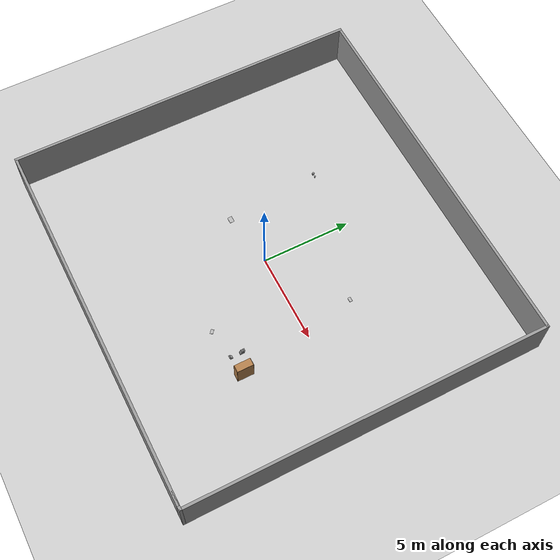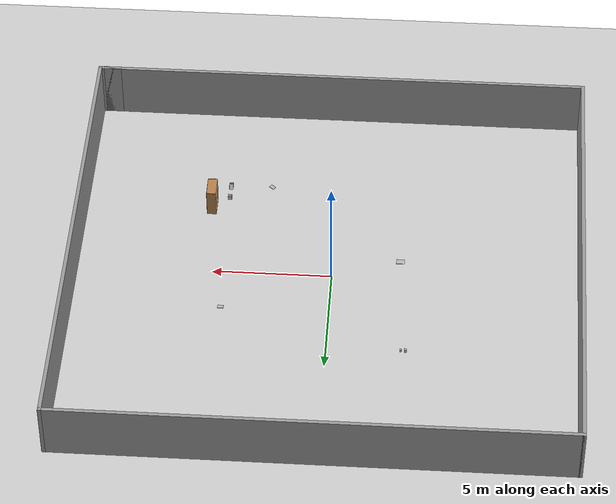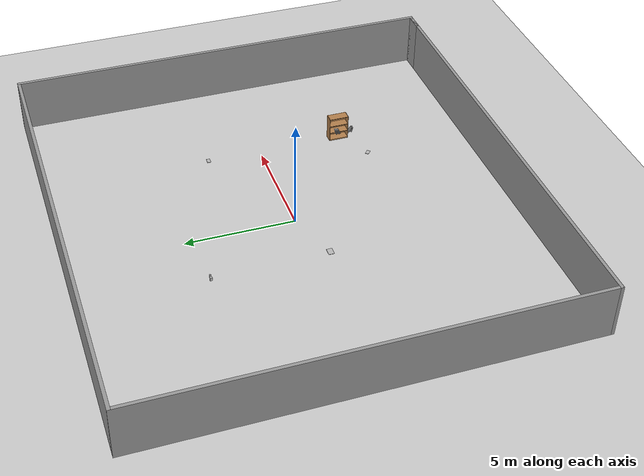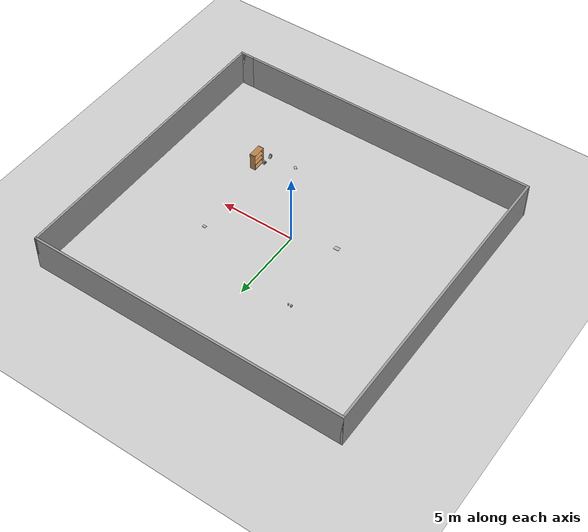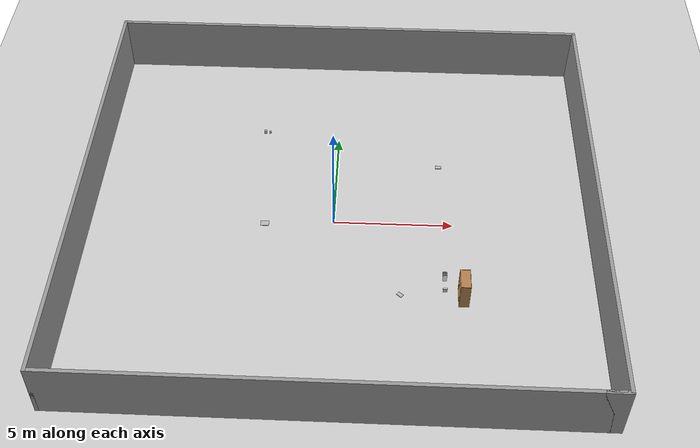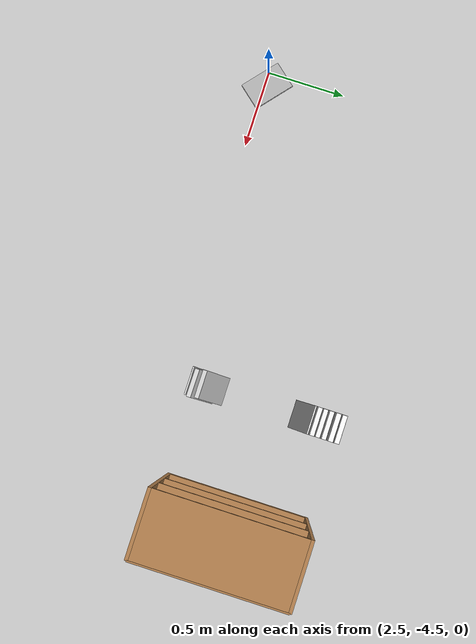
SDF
<sdf version="1.7">
 <world name="default">
  <light name="sun" type="directional">
   <pose>0 0 10 0 -0 0</pose>
   <diffuse>0.8 0.8 0.8 1</diffuse>
   <specular>0.1 0.1 0.1 1</specular>
   <attenuation>
    <range>1000</range>
    <constant>0.9</constant>
    <linear>0.01</linear>
    <quadratic>0.001</quadratic>
   </attenuation>
   <direction>-0.5 0.5 -1</direction>
   <spot><inner_angle>0</inner_angle><outer_angle>0</outer_angle><falloff>0</falloff></spot>
  </light>
  <model name="ground_plane">
   <static>1</static>
   <link name="link">
    <collision name="collision">
     <geometry><plane><normal>0 0 1</normal><size>100 100</size></plane></geometry>
     <surface><friction><ode><mu>100</mu><mu2>50</mu2></ode></friction></surface>
    </collision>
    <visual name="visual">
     <cast_shadows>0</cast_shadows>
     <geometry><plane><normal>0 0 1</normal><size>100 100</size></plane></geometry>
     <material>
      <script><uri>file://media/materials/scripts/gazebo.material</uri><name>Gazebo/Grey</name></script>
     </material>
    </visual>
   </link>
  </model>
  <gravity>0 0 -9.8</gravity>
  <magnetic_field>6e-06 2.3e-05 -4.2e-05</magnetic_field>
  <atmosphere type="adiabatic"/>
  <physics name="default_physics" default="0" type="ode">
   <max_step_size>0.001</max_step_size>
   <real_time_factor>1</real_time_factor>
   <real_time_update_rate>1000</real_time_update_rate>
  </physics>
  <scene><ambient>0.4 0.4 0.4 1</ambient><background>0.7 0.7 0.7 1</background><shadows>1</shadows></scene>
  <spherical_coordinates>
   <surface_model>EARTH_WGS84</surface_model>
   <latitude_deg>0</latitude_deg>
   <longitude_deg>0</longitude_deg>
   <elevation>0</elevation>
   <heading_deg>0</heading_deg>
  </spherical_coordinates>
  <model name="bookshelf">
   <static>1</static>
   <link name="link">
    <inertial><mass>1</mass></inertial>
    <collision name="back">
     <pose>0 0.005 0.6 0 -0 0</pose>
     <geometry><box><size>0.9 0.01 1.2</size></box></geometry>
    </collision>
    <visual name="visual1">
     <pose>0 0.005 0.6 0 -0 0</pose>
     <geometry><box><size>0.9 0.01 1.2</size></box></geometry>
     <material>
      <script><uri>file://media/materials/scripts/gazebo.material</uri><name>Gazebo/Wood</name></script>
     </material>
    </visual>
    <collision name="left_side">
     <pose>0.45 -0.195 0.6 0 -0 0</pose>
     <geometry><box><size>0.02 0.4 1.2</size></box></geometry>
    </collision>
    <visual name="visual2">
     <pose>0.45 -0.195 0.6 0 -0 0</pose>
     <geometry><box><size>0.02 0.4 1.2</size></box></geometry>
     <material>
      <script><uri>file://media/materials/scripts/gazebo.material</uri><name>Gazebo/Wood</name></script>
     </material>
    </visual>
    <collision name="right_side">
     <pose>-0.45 -0.195 0.6 0 -0 0</pose>
     <geometry><box><size>0.02 0.4 1.2</size></box></geometry>
    </collision>
    <visual name="visual3">
     <pose>-0.45 -0.195 0.6 0 -0 0</pose>
     <geometry><box><size>0.02 0.4 1.2</size></box></geometry>
     <material>
      <script><uri>file://media/materials/scripts/gazebo.material</uri><name>Gazebo/Wood</name></script>
     </material>
    </visual>
    <collision name="bottom">
     <pose>0 -0.195 0.03 0 -0 0</pose>
     <geometry><box><size>0.88 0.4 0.06</size></box></geometry>
    </collision>
    <visual name="visual4">
     <pose>0 -0.195 0.03 0 -0 0</pose>
     <geometry><box><size>0.88 0.4 0.06</size></box></geometry>
     <material>
      <script><uri>file://media/materials/scripts/gazebo.material</uri><name>Gazebo/Wood</name></script>
     </material>
    </visual>
    <collision name="top">
     <pose>0 -0.195 1.19 0 -0 0</pose>
     <geometry><box><size>0.88 0.4 0.02</size></box></geometry>
    </collision>
    <visual name="visual5">
     <pose>0 -0.195 1.19 0 -0 0</pose>
     <geometry><box><size>0.88 0.4 0.02</size></box></geometry>
     <material>
      <script><uri>file://media/materials/scripts/gazebo.material</uri><name>Gazebo/Wood</name></script>
     </material>
    </visual>
    <collision name="low_shelf">
     <pose>0 -0.195 0.43 0 -0 0</pose>
     <geometry><box><size>0.88 0.4 0.02</size></box></geometry>
    </collision>
    <visual name="visual6">
     <pose>0 -0.195 0.43 0 -0 0</pose>
     <geometry><box><size>0.88 0.4 0.02</size></box></geometry>
     <material>
      <script><uri>file://media/materials/scripts/gazebo.material</uri><name>Gazebo/Wood</name></script>
     </material>
    </visual>
    <collision name="high_shelf">
     <pose>0 -0.195 0.8 0 -0 0</pose>
     <geometry><box><size>0.88 0.4 0.02</size></box></geometry>
    </collision>
    <visual name="visual7">
     <pose>0 -0.195 0.8 0 -0 0</pose>
     <geometry><box><size>0.88 0.4 0.02</size></box></geometry>
     <material>
      <script><uri>file://media/materials/scripts/gazebo.material</uri><name>Gazebo/Wood</name></script>
     </material>
    </visual>
   </link>
   <pose>5.52634 -3.859 0.022492 0 0 -1.57</pose>
  </model>
  <model name="book_10">
   <link name="cover">
    <pose>0 -0.000108 0.015405 0 -0 0</pose>
    <visual name="visual">
     <geometry><box><size>0.245 0.16 0.03</size></box></geometry>
     <material>
      <script>
       <uri>model://book_10/materials/scripts</uri>
       <uri>model://book_10/materials/textures</uri>
       <name>book_10</name>
      </script>
     </material>
    </visual>
    <collision name="collision"><geometry><box><size>0.245 0.16 0.03</size></box></geometry></collision>
   </link>
   <link name="page">
    <pose>0 0.000608 0.015405 0 -0 0</pose>
    <visual name="visual">
     <geometry><box><size>0.24502 0.15862 0.028</size></box></geometry>
     <material>
      <lighting>1</lighting>
      <ambient>1 1 1 1</ambient>
      <diffuse>1 1 1 1</diffuse>
      <specular>0.01 0.01 0.01 1</specular>
      <emissive>0 0 0 1</emissive>
      <shader type="vertex"><normal_map>__default__</normal_map></shader>
     </material>
    </visual>
    <collision name="collision"><geometry><box><size>0.245 0.16 0.03</size></box></geometry></collision>
   </link>
   <static>1</static>
   <pose>4.53805 -3.48289 0.958324 3.13855 -1.30602 1.57134</pose>
  </model>
  <model name="book_1">
   <link name="cover">
    <pose>0 -0.000108 0.015405 0 -0 0</pose>
    <visual name="visual">
     <geometry><box><size>0.245 0.16 0.03</size></box></geometry>
     <material>
      <script>
       <uri>model://book_1/materials/scripts</uri>
       <uri>model://book_1/materials/textures</uri>
       <name>book_1</name>
      </script>
     </material>
    </visual>
    <collision name="collision"><geometry><box><size>0.245 0.16 0.03</size></box></geometry></collision>
   </link>
   <link name="page">
    <pose>0 0.000608 0.015405 0 -0 0</pose>
    <visual name="visual">
     <geometry><box><size>0.24502 0.15862 0.028</size></box></geometry>
     <material>
      <lighting>1</lighting>
      <ambient>1 1 1 1</ambient>
      <diffuse>1 1 1 1</diffuse>
      <specular>0.01 0.01 0.01 1</specular>
      <emissive>0 0 0 1</emissive>
      <shader type="vertex"><normal_map>__default__</normal_map></shader>
     </material>
    </visual>
    <collision name="collision"><geometry><box><size>0.245 0.16 0.03</size></box></geometry></collision>
   </link>
   <static>1</static>
   <pose>4.53796 -3.57288 0.95783 3.13964 -1.15052 1.57019</pose>
  </model>
  <model name="book_12">
   <link name="cover">
    <pose>0 -0.000108 0.015405 0 -0 0</pose>
    <visual name="visual">
     <geometry><box><size>0.245 0.16 0.03</size></box></geometry>
     <material>
      <script>
       <uri>model://book_12/materials/scripts</uri>
       <uri>model://book_12/materials/textures</uri>
       <name>book_12</name>
      </script>
     </material>
    </visual>
    <collision name="collision"><geometry><box><size>0.245 0.16 0.03</size></box></geometry></collision>
   </link>
   <link name="page">
    <pose>0 0.000608 0.015405 0 -0 0</pose>
    <visual name="visual">
     <geometry><box><size>0.24502 0.15862 0.028</size></box></geometry>
     <material>
      <lighting>1</lighting>
      <ambient>1 1 1 1</ambient>
      <diffuse>1 1 1 1</diffuse>
      <specular>0.01 0.01 0.01 1</specular>
      <emissive>0 0 0 1</emissive>
      <shader type="vertex"><normal_map>__default__</normal_map></shader>
     </material>
    </visual>
    <collision name="collision"><geometry><box><size>0.245 0.16 0.03</size></box></geometry></collision>
   </link>
   <static>1</static>
   <pose>4.53794 -3.60986 0.955818 3.13975 -1.123 1.57007</pose>
  </model>
  <model name="book_14">
   <link name="cover">
    <pose>0 -0.000108 0.015405 0 -0 0</pose>
    <visual name="visual">
     <geometry><box><size>0.245 0.16 0.03</size></box></geometry>
     <material>
      <script>
       <uri>model://book_14/materials/scripts</uri>
       <uri>model://book_14/materials/textures</uri>
       <name>book_14</name>
      </script>
     </material>
    </visual>
    <collision name="collision"><geometry><box><size>0.245 0.16 0.03</size></box></geometry></collision>
   </link>
   <link name="page">
    <pose>0 0.000608 0.015405 0 -0 0</pose>
    <visual name="visual">
     <geometry><box><size>0.24502 0.15862 0.028</size></box></geometry>
     <material>
      <lighting>1</lighting>
      <ambient>1 1 1 1</ambient>
      <diffuse>1 1 1 1</diffuse>
      <specular>0.01 0.01 0.01 1</specular>
      <emissive>0 0 0 1</emissive>
      <shader type="vertex"><normal_map>__default__</normal_map></shader>
     </material>
    </visual>
    <collision name="collision"><geometry><box><size>0.245 0.16 0.03</size></box></geometry></collision>
   </link>
   <static>1</static>
   <pose>4.53795 -3.51692 0.962229 3.13848 -1.31226 1.57142</pose>
  </model>
  <model name="book_17">
   <link name="cover">
    <pose>0 -0.000108 0.015405 0 -0 0</pose>
    <visual name="visual">
     <geometry><box><size>0.245 0.16 0.03</size></box></geometry>
     <material>
      <script>
       <uri>model://book_17/materials/scripts</uri>
       <uri>model://book_17/materials/textures</uri>
       <name>book_17</name>
      </script>
     </material>
    </visual>
    <collision name="collision"><geometry><box><size>0.245 0.16 0.03</size></box></geometry></collision>
   </link>
   <link name="page">
    <pose>0 0.000608 0.015405 0 -0 0</pose>
    <visual name="visual">
     <geometry><box><size>0.24502 0.15862 0.028</size></box></geometry>
     <material>
      <lighting>1</lighting>
      <ambient>1 1 1 1</ambient>
      <diffuse>1 1 1 1</diffuse>
      <specular>0.01 0.01 0.01 1</specular>
      <emissive>0 0 0 1</emissive>
      <shader type="vertex"><normal_map>__default__</normal_map></shader>
     </material>
    </visual>
    <collision name="collision"><geometry><box><size>0.245 0.16 0.03</size></box></geometry></collision>
   </link>
   <static>1</static>
   <pose>4.53801 -3.64141 0.957888 3.13972 -1.13115 1.5701</pose>
  </model>
  <model name="book_8">
   <link name="cover">
    <pose>0 -0.000108 0.005 0 -0 0</pose>
    <visual name="visual">
     <geometry><box><size>0.245 0.16 0.01</size></box></geometry>
     <material>
      <script>
       <uri>model://book_8/materials/scripts</uri>
       <uri>model://book_8/materials/textures</uri>
       <name>book_8</name>
      </script>
     </material>
    </visual>
    <collision name="collision"><geometry><box><size>0.245 0.16 0.01</size></box></geometry></collision>
   </link>
   <link name="page">
    <pose>0 0.000608 0.005 0 -0 0</pose>
    <visual name="visual">
     <geometry><box><size>0.24502 0.15862 0.008</size></box></geometry>
     <material>
      <lighting>1</lighting>
      <ambient>1 1 1 1</ambient>
      <diffuse>1 1 1 1</diffuse>
      <specular>0.01 0.01 0.01 1</specular>
      <emissive>0 0 0 1</emissive>
      <shader type="vertex"><normal_map>__default__</normal_map></shader>
     </material>
    </visual>
    <collision name="collision"><geometry><box><size>0.245 0.16 0.008</size></box></geometry></collision>
   </link>
   <static>1</static>
   <pose>4.5374 -4.26975 0.9372 0.003027 -1.30463 -1.57611</pose>
  </model>
  <model name="book_9">
   <link name="cover">
    <pose>0 -0.000108 0.005 0 -0 0</pose>
    <visual name="visual">
     <geometry><box><size>0.245 0.16 0.01</size></box></geometry>
     <material>
      <script>
       <uri>model://book_9/materials/scripts</uri>
       <uri>model://book_9/materials/textures</uri>
       <name>book_9</name>
      </script>
     </material>
    </visual>
    <collision name="collision"><geometry><box><size>0.245 0.16 0.01</size></box></geometry></collision>
   </link>
   <link name="page">
    <pose>0 0.000608 0.005 0 -0 0</pose>
    <visual name="visual">
     <geometry><box><size>0.24502 0.15862 0.008</size></box></geometry>
     <material>
      <lighting>1</lighting>
      <ambient>1 1 1 1</ambient>
      <diffuse>1 1 1 1</diffuse>
      <specular>0.01 0.01 0.01 1</specular>
      <emissive>0 0 0 1</emissive>
      <shader type="vertex"><normal_map>__default__</normal_map></shader>
     </material>
    </visual>
    <collision name="collision"><geometry><box><size>0.245 0.16 0.008</size></box></geometry></collision>
   </link>
   <static>1</static>
   <pose>4.53808 -3.65715 0.949304 3.13971 -1.13441 1.57011</pose>
  </model>
  <model name="book_18">
   <link name="cover">
    <pose>0 -0.000108 0.015405 0 -0 0</pose>
    <visual name="visual">
     <geometry><box><size>0.245 0.16 0.03</size></box></geometry>
     <material>
      <script>
       <uri>model://book_18/materials/scripts</uri>
       <uri>model://book_18/materials/textures</uri>
       <name>book_18</name>
      </script>
     </material>
    </visual>
    <collision name="collision"><geometry><box><size>0.245 0.16 0.03</size></box></geometry></collision>
   </link>
   <link name="page">
    <pose>0 0.000608 0.015405 0 -0 0</pose>
    <visual name="visual">
     <geometry><box><size>0.24502 0.15862 0.028</size></box></geometry>
     <material>
      <lighting>1</lighting>
      <ambient>1 1 1 1</ambient>
      <diffuse>1 1 1 1</diffuse>
      <specular>0.01 0.01 0.01 1</specular>
      <emissive>0 0 0 1</emissive>
      <shader type="vertex"><normal_map>__default__</normal_map></shader>
     </material>
    </visual>
    <collision name="collision"><geometry><box><size>0.245 0.16 0.03</size></box></geometry></collision>
   </link>
   <static>1</static>
   <pose>4.54387 -4.23299 0.940395 0.001746 -1.09719 -1.57474</pose>
  </model>
  <model name="book_16">
   <link name="cover">
    <pose>0 -0.000108 0.015405 0 -0 0</pose>
    <visual name="visual">
     <geometry><box><size>0.245 0.16 0.03</size></box></geometry>
     <material>
      <script>
       <uri>model://book_16/materials/scripts</uri>
       <uri>model://book_16/materials/textures</uri>
       <name>book_16</name>
      </script>
     </material>
    </visual>
    <collision name="collision"><geometry><box><size>0.245 0.16 0.03</size></box></geometry></collision>
   </link>
   <link name="page">
    <pose>0 0.000608 0.015405 0 -0 0</pose>
    <visual name="visual">
     <geometry><box><size>0.24502 0.15862 0.028</size></box></geometry>
     <material>
      <lighting>1</lighting>
      <ambient>1 1 1 1</ambient>
      <diffuse>1 1 1 1</diffuse>
      <specular>0.01 0.01 0.01 1</specular>
      <emissive>0 0 0 1</emissive>
      <shader type="vertex"><normal_map>__default__</normal_map></shader>
     </material>
    </visual>
    <collision name="collision"><geometry><box><size>0.245 0.16 0.03</size></box></geometry></collision>
   </link>
   <static>1</static>
   <pose>4.5372 -4.18502 0.937568 0.001602 -1.05077 -1.57458</pose>
  </model>
  <model name="newspaper_2">
   <link name="link_0">
    <visual name="visual">
     <geometry><box><size>0.35 0.25 0.02</size></box></geometry>
     <material>
      <script>
       <uri>model://newspaper_2/materials/scripts</uri>
       <uri>model://newspaper_2/materials/textures</uri>
       <name>newspaper_2</name>
      </script>
     </material>
    </visual>
    <collision name="collision"><geometry><box><size>0.35 0.25 0.02</size></box></geometry></collision>
   </link>
   <static>1</static>
   <pose>-2.85978 -0.607971 0.468138 0 -0 0</pose>
  </model>
  <model name="book_3">
   <link name="cover">
    <pose>0 -0.000108 0.01 0 -0 0</pose>
    <visual name="visual">
     <geometry><box><size>0.245 0.16 0.02</size></box></geometry>
     <material>
      <script>
       <uri>model://book_3/materials/scripts</uri>
       <uri>model://book_3/materials/textures</uri>
       <name>book_3</name>
      </script>
     </material>
    </visual>
    <collision name="collision"><geometry><box><size>0.245 0.16 0.02</size></box></geometry></collision>
   </link>
   <link name="page">
    <pose>0 0.000608 0.01 0 -0 0</pose>
    <visual name="visual">
     <geometry><box><size>0.24502 0.15862 0.018</size></box></geometry>
     <material>
      <lighting>1</lighting>
      <ambient>1 1 1 1</ambient>
      <diffuse>1 1 1 1</diffuse>
      <specular>0.01 0.01 0.01 1</specular>
      <emissive>0 0 0 1</emissive>
      <shader type="vertex"><normal_map>__default__</normal_map></shader>
     </material>
    </visual>
    <collision name="collision"><geometry><box><size>0.245 0.16 0.018</size></box></geometry></collision>
   </link>
   <static>1</static>
   <pose>2.79077 -4.41775 0.767819 0 0 -0.700697</pose>
  </model>
  <model name="book_19">
   <link name="cover">
    <pose>0 -0.000108 0.015405 0 -0 0</pose>
    <visual name="visual">
     <geometry><box><size>0.245 0.16 0.03</size></box></geometry>
     <material>
      <script>
       <uri>model://book_19/materials/scripts</uri>
       <uri>model://book_19/materials/textures</uri>
       <name>book_19</name>
      </script>
     </material>
    </visual>
    <collision name="collision"><geometry><box><size>0.245 0.16 0.03</size></box></geometry></collision>
   </link>
   <link name="page">
    <pose>0 0.000608 0.015405 0 -0 0</pose>
    <visual name="visual">
     <geometry><box><size>0.24502 0.15862 0.028</size></box></geometry>
     <material>
      <lighting>1</lighting>
      <ambient>1 1 1 1</ambient>
      <diffuse>1 1 1 1</diffuse>
      <specular>0.01 0.01 0.01 1</specular>
      <emissive>0 0 0 1</emissive>
      <shader type="vertex"><normal_map>__default__</normal_map></shader>
     </material>
    </visual>
    <collision name="collision"><geometry><box><size>0.245 0.16 0.03</size></box></geometry></collision>
   </link>
   <static>1</static>
   <pose>4.39835 2.70804 0.766184 0 -0 0</pose>
  </model>
  <model name="tea_box">
   <link name="link">
    <pose>0 0 0.075 0 -0 0</pose>
    <visual name="visual">
     <geometry><box><size>0.1 0.1 0.15</size></box></geometry>
     <material>
      <script>
       <uri>model://tea_box/materials/scripts</uri>
       <uri>model://tea_box/materials/textures</uri>
       <name>tea_pat</name>
      </script>
     </material>
    </visual>
    <collision name="collision"><geometry><box><size>0.1 0.1 0.15</size></box></geometry></collision>
   </link>
   <static>1</static>
   <pose>-3.27945 4.66486 0.699417 0 -0 0</pose>
  </model>
  <model name="coffee_box">
   <link name="link_0">
    <visual name="visual">
     <pose>0 0 0.06 0 -0 0</pose>
     <geometry><cylinder><radius>0.04</radius><length>0.12</length></cylinder></geometry>
     <material>
      <script>
       <uri>model://coffee_box/materials/scripts</uri>
       <uri>model://coffee_box/materials/textures</uri>
       <name>coffee_pat</name>
      </script>
     </material>
    </visual>
    <collision name="collision">
     <geometry><cylinder><radius>0.04</radius><length>0.12</length></cylinder></geometry>
    </collision>
   </link>
   <static>1</static>
   <pose>-3.07493 4.65525 0.698978 0 -0 0</pose>
  </model>
  <audio><device>default</device></audio>
  <model name="Untitled">
   <pose>0.188261 0.224566 0 0 -0 0</pose>
   <link name="Wall_0">
    <collision name="Wall_0_Collision">
     <geometry><box><size>21 0.15 2.5</size></box></geometry>
     <pose>0 0 1.25 0 -0 0</pose>
    </collision>
    <visual name="Wall_0_Visual">
     <pose>0 0 1.25 0 -0 0</pose>
     <geometry><box><size>21 0.15 2.5</size></box></geometry>
     <material>
      <script><uri>file://media/materials/scripts/gazebo.material</uri><name>Gazebo/Grey</name></script>
      <ambient>1 1 1 1</ambient>
     </material>
     <meta><layer>0</layer></meta>
    </visual>
    <pose>-0.125 -9.925 0 0 -0 0</pose>
   </link>
   <link name="Wall_2">
    <collision name="Wall_2_Collision">
     <geometry><box><size>20 0.15 2.5</size></box></geometry>
     <pose>0 0 1.25 0 -0 0</pose>
    </collision>
    <visual name="Wall_2_Visual">
     <pose>0 0 1.25 0 -0 0</pose>
     <geometry><box><size>20 0.15 2.5</size></box></geometry>
     <material>
      <script><uri>file://media/materials/scripts/gazebo.material</uri><name>Gazebo/Grey</name></script>
      <ambient>1 1 1 1</ambient>
     </material>
     <meta><layer>0</layer></meta>
    </visual>
    <pose>-10.55 -0 0 0 -0 1.5708</pose>
   </link>
   <link name="Wall_3">
    <collision name="Wall_3_Collision">
     <geometry><box><size>21.25 0.15 2.5</size></box></geometry>
     <pose>0 0 1.25 0 -0 0</pose>
    </collision>
    <visual name="Wall_3_Visual">
     <pose>0 0 1.25 0 -0 0</pose>
     <geometry><box><size>21.25 0.15 2.5</size></box></geometry>
     <material>
      <script><uri>file://media/materials/scripts/gazebo.material</uri><name>Gazebo/Grey</name></script>
      <ambient>1 1 1 1</ambient>
     </material>
     <meta><layer>0</layer></meta>
    </visual>
    <pose>-0 9.925 0 0 -0 0</pose>
   </link>
   <link name="Wall_4">
    <collision name="Wall_4_Collision">
     <geometry><box><size>20 0.15 2.5</size></box></geometry>
     <pose>0 0 1.25 0 -0 0</pose>
    </collision>
    <visual name="Wall_4_Visual">
     <pose>0 0 1.25 0 -0 0</pose>
     <geometry><box><size>20 0.15 2.5</size></box></geometry>
     <material>
      <script><uri>file://media/materials/scripts/gazebo.material</uri><name>Gazebo/Grey</name></script>
      <ambient>1 1 1 1</ambient>
     </material>
     <meta><layer>0</layer></meta>
    </visual>
    <pose>10.55 -0 0 0 -0 -1.5708</pose>
   </link>
   <link name="Wall_5">
    <collision name="Wall_5_Collision">
     <geometry><box><size>1 0.15 2.5</size></box></geometry>
     <pose>0 0 1.25 0 -0 0</pose>
    </collision>
    <visual name="Wall_5_Visual">
     <pose>0 0 1.25 0 -0 0</pose>
     <geometry><box><size>1 0.15 2.5</size></box></geometry>
     <material>
      <script><uri>file://media/materials/scripts/gazebo.material</uri><name>Gazebo/Grey</name></script>
      <ambient>1 1 1 1</ambient>
     </material>
     <meta><layer>0</layer></meta>
    </visual>
    <pose>10.125 -9.925 0 0 -0 3.14159</pose>
   </link>
   <static>1</static>
  </model>
 </world>
</sdf>
